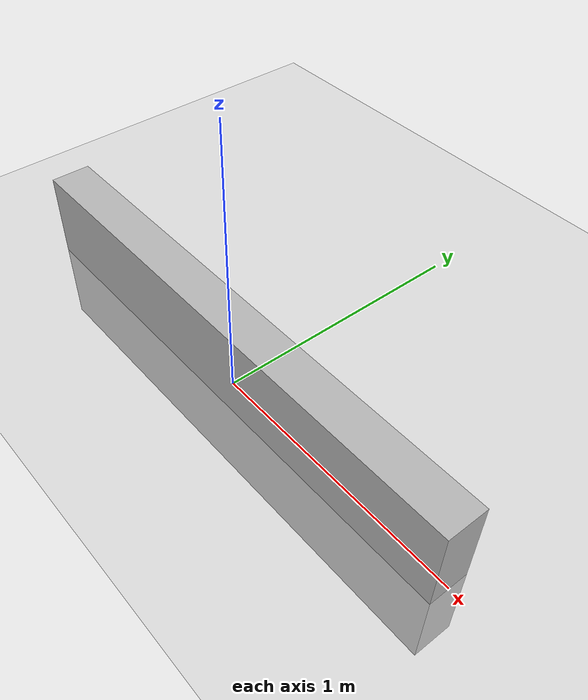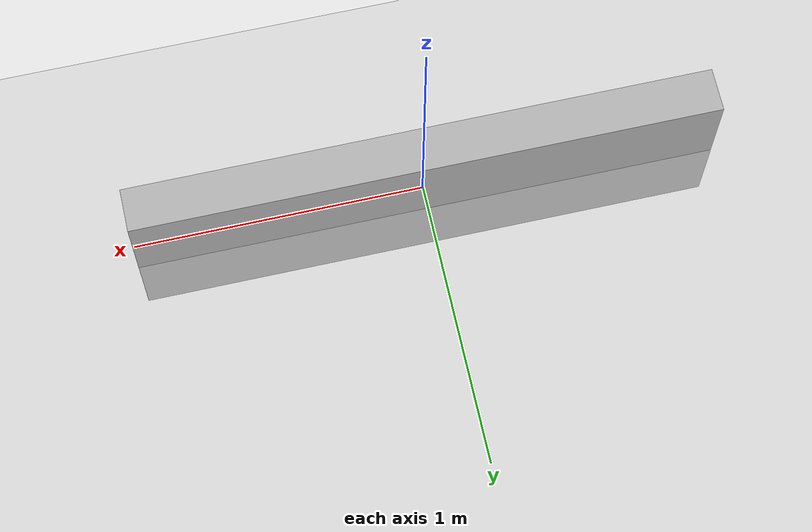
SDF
<?xml version="1.0" ?>
<sdf version='1.4'>
  <world name='default'>

    <physics type='ode'>
      <max_step_size>0.001</max_step_size>
      <real_time_factor>1</real_time_factor>
      <real_time_update_rate>1000</real_time_update_rate>
      <magnetic_field>34 0 -36</magnetic_field>
      <gravity>0 0 -9.8</gravity>
    </physics>

    <spherical_coordinates>
      <surface_model>EARTH_WGS84</surface_model>
      <latitude_deg>0</latitude_deg>
      <longitude_deg>0</longitude_deg>
      <elevation>0</elevation>
      <heading_deg>0</heading_deg>
    </spherical_coordinates>

    <!-- A global light source -->
   <scene>
      <sky>
        <clouds>
          <speed>12</speed>
        </clouds>
      </sky>
   </scene>

   <include>
     <uri>model://sun</uri>
   </include>

    <!-- A ground plane -->
    <include>
      <uri>model://ground_plane</uri>
    </include>

    <!-- A paltform for drone with manipulator to take off -->
    <model name="take off platorm">
      <static>true</static>
      <link name="link">
        <collision name="collision">
          <geometry>
            <box>
              <size>2 0.15 0.65</size>
            </box>
          </geometry>
        </collision>
        <visual name="visual">
          <geometry>
            <box>
              <size>2 0.15 0.65</size>
            </box>
          </geometry>
        </visual>
      </link>
      <pose>0 0 0 0 0 0</pose>
    </model>

    <!-- World plugin: Link attacher -->
    <plugin name="link_attacher_plugin" filename="libgazebo_ros_link_attacher.so">
    </plugin>

  </world>
</sdf>
